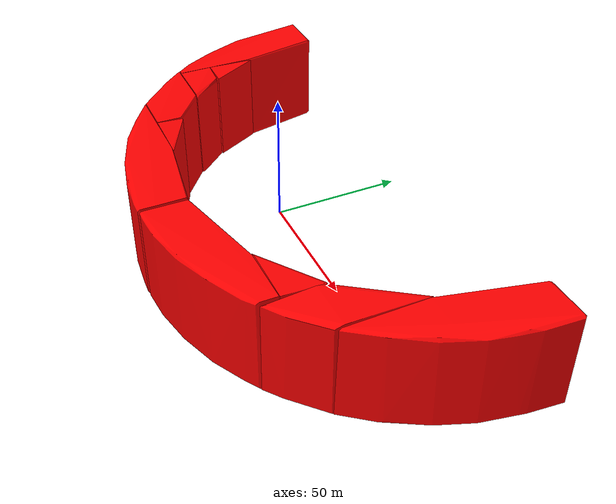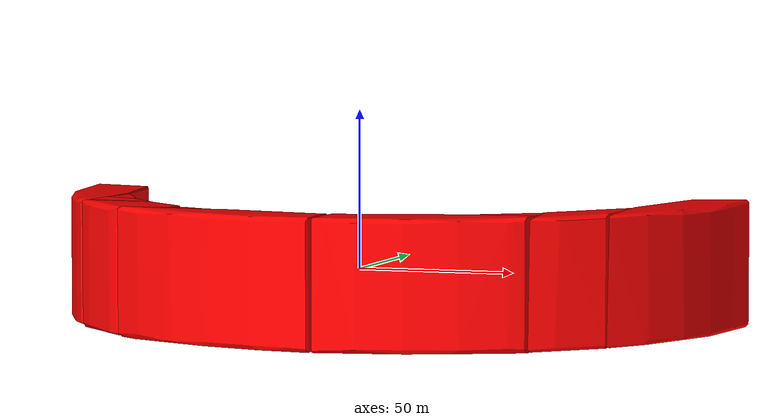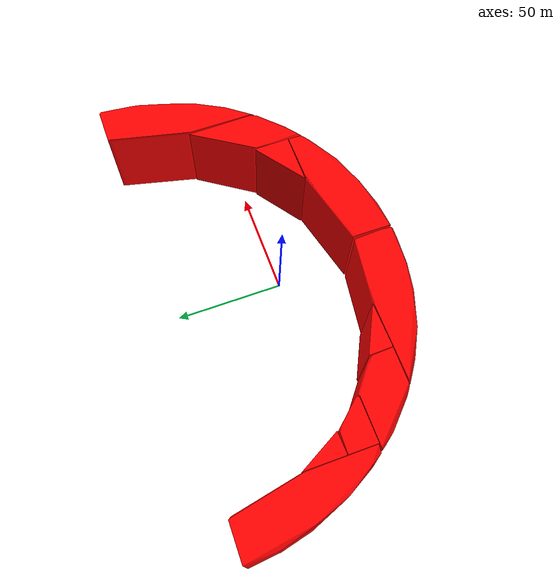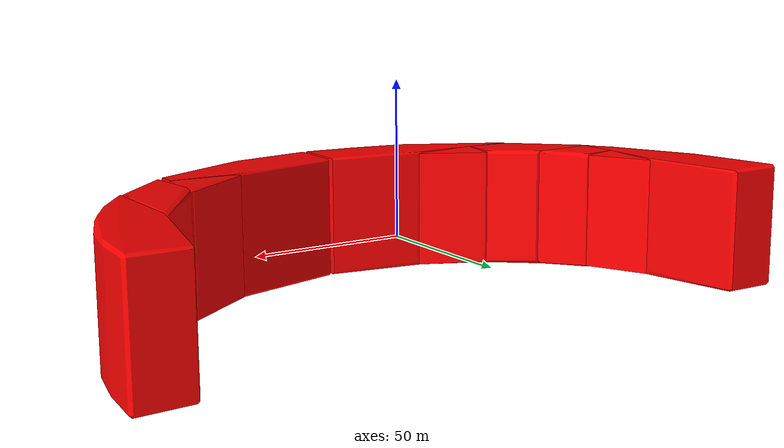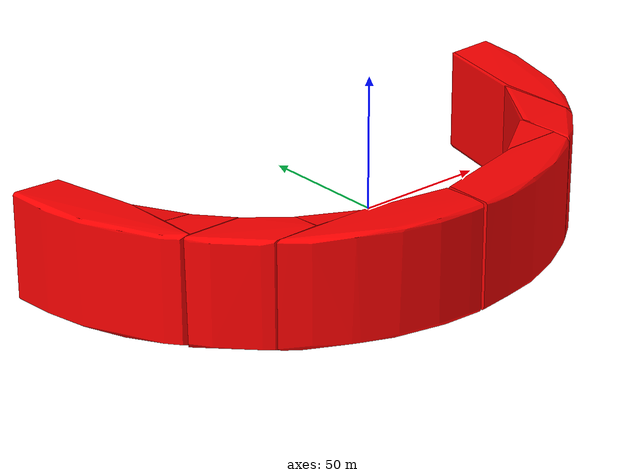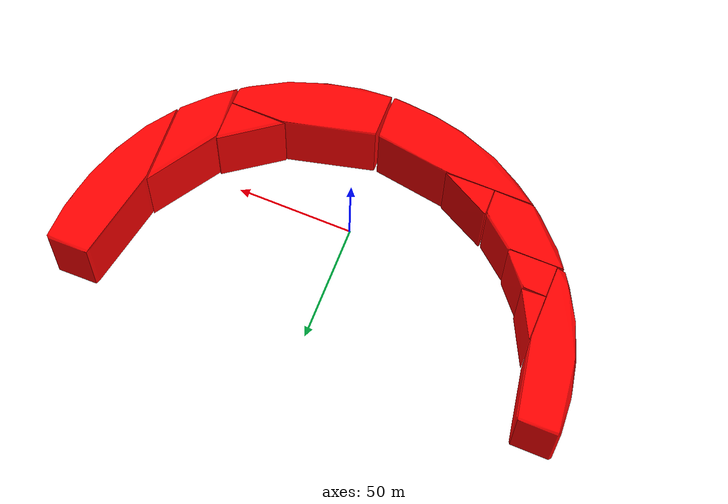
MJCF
<mujoco>
    <asset>
        <mesh file="rainbow_stacker/part4/0_rainbow_part4_20200427_20200428.stl" name="rainbow0"></mesh>
        <mesh file="rainbow_stacker/part4/1_rainbow_part4_20200427_20200428.stl" name="rainbow1"></mesh>
        <mesh file="rainbow_stacker/part4/2_rainbow_part4_20200427_20200428.stl" name="rainbow2"></mesh>
        <mesh file="rainbow_stacker/part4/3_rainbow_part4_20200427_20200428.stl" name="rainbow3"></mesh>
        <mesh file="rainbow_stacker/part4/4_rainbow_part4_20200427_20200428.stl" name="rainbow4"></mesh>
        <mesh file="rainbow_stacker/part4/5_rainbow_part4_20200427_20200428.stl" name="rainbow5"></mesh>
        <mesh file="rainbow_stacker/part4/6_rainbow_part4_20200427_20200428.stl" name="rainbow6"></mesh>
        <mesh file="rainbow_stacker/part4/7_rainbow_part4_20200427_20200428.stl" name="rainbow7"></mesh>
        <mesh file="rainbow_stacker/part4/8_rainbow_part4_20200427_20200428.stl" name="rainbow8"></mesh>
        <mesh file="rainbow_stacker/part4/9_rainbow_part4_20200427_20200428.stl" name="rainbow9"></mesh>
        <material name="block_mat" specular="0" shininess="0.5" reflectance="0" rgba="1 0 0 1"/>
    </asset>
    <worldbody>
        <body quat="0.7071 0 -0.7071 0">
            <geom type="mesh" mesh="rainbow0" material="block_mat"/>
            <geom type="mesh" mesh="rainbow1" material="block_mat"/>
            <geom type="mesh" mesh="rainbow2" material="block_mat"/>
            <geom type="mesh" mesh="rainbow3" material="block_mat"/>
            <geom type="mesh" mesh="rainbow4" material="block_mat"/>
            <geom type="mesh" mesh="rainbow5" material="block_mat"/>
            <geom type="mesh" mesh="rainbow6" material="block_mat"/>
            <geom type="mesh" mesh="rainbow7" material="block_mat"/>
            <geom type="mesh" mesh="rainbow8" material="block_mat"/>
            <geom type="mesh" mesh="rainbow9" material="block_mat"/>
            <joint type="free"/>
        </body>
    </worldbody>
</mujoco>
